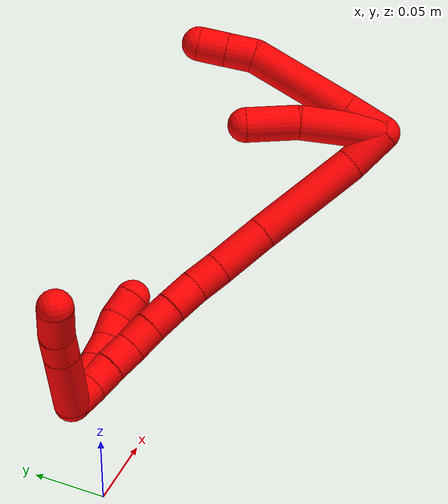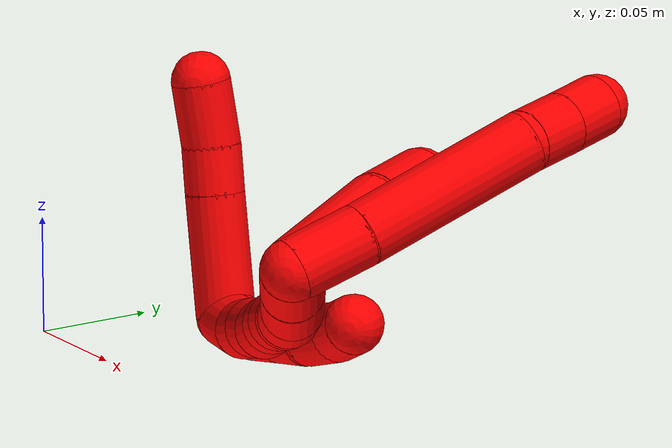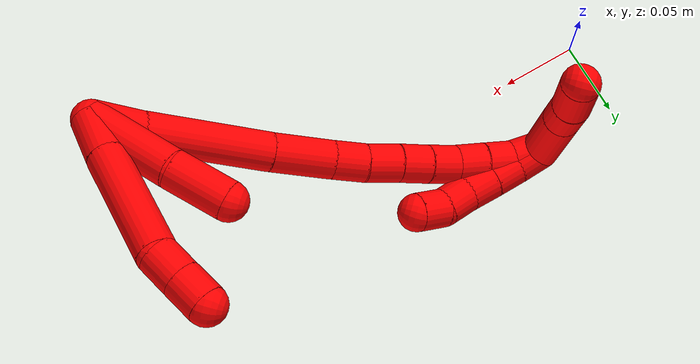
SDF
<sdf version="1.7">
 <world name="default">
  <model name="2">
   <static>0</static>
   <link name="2">
    <collision name="collision-cylinder-e_1_2_8">
     <pose>0.01208 0.001166 -0.009329 -3.0172 0.909456 -2.8882</pose>
     <geometry><cylinder><radius>0.0125</radius><length>0.030615</length></cylinder></geometry>
     <surface>
      <friction><ode><mu>1.16</mu><mu2>1.16</mu2><slip1>0</slip1><slip2>0</slip2></ode></friction>
      <contact><ode><kp>1e+06</kp><kd>1</kd><max_vel>0</max_vel><min_depth>0.001</min_depth></ode></contact>
     </surface>
    </collision>
    <visual name="visual-cylinder-e_1_2_8">
     <pose>0.01208 0.001166 -0.009329 -3.0172 0.909456 -2.8882</pose>
     <geometry><cylinder><radius>0.0125</radius><length>0.030615</length></cylinder></geometry>
     <material><ambient>1 0 0 1</ambient></material>
    </visual>
    <collision name="collision-cylinder-e_2_8_9">
     <pose>0.053519 0.006621 -0.043792 -2.97259 0.855669 -2.77428</pose>
     <geometry><cylinder><radius>0.0125</radius><length>0.07777</length></cylinder></geometry>
     <surface>
      <friction><ode><mu>1.16</mu><mu2>1.16</mu2><slip1>0</slip1><slip2>0</slip2></ode></friction>
      <contact><ode><kp>1e+06</kp><kd>1</kd><max_vel>0</max_vel><min_depth>0.001</min_depth></ode></contact>
     </surface>
    </collision>
    <visual name="visual-cylinder-e_2_8_9">
     <pose>0.053519 0.006621 -0.043792 -2.97259 0.855669 -2.77428</pose>
     <geometry><cylinder><radius>0.0125</radius><length>0.07777</length></cylinder></geometry>
     <material><ambient>1 0 0 1</ambient></material>
    </visual>
    <collision name="collision-cylinder-e_3_9_10">
     <pose>0.088346 0.010868 -0.077873 3.13685 0.548646 3.12476</pose>
     <geometry><cylinder><radius>0.0125</radius><length>0.020971</length></cylinder></geometry>
     <surface>
      <friction><ode><mu>1.16</mu><mu2>1.16</mu2><slip1>0</slip1><slip2>0</slip2></ode></friction>
      <contact><ode><kp>1e+06</kp><kd>1</kd><max_vel>0</max_vel><min_depth>0.001</min_depth></ode></contact>
     </surface>
    </collision>
    <visual name="visual-cylinder-e_3_9_10">
     <pose>0.088346 0.010868 -0.077873 3.13685 0.548646 3.12476</pose>
     <geometry><cylinder><radius>0.0125</radius><length>0.020971</length></cylinder></geometry>
     <material><ambient>1 0 0 1</ambient></material>
    </visual>
    <collision name="collision-cylinder-e_4_10_6">
     <pose>0.099165 0.010939 -0.095645 -3.12873 0.544944 -3.09557</pose>
     <geometry><cylinder><radius>0.0125</radius><length>0.020644</length></cylinder></geometry>
     <surface>
      <friction><ode><mu>1.16</mu><mu2>1.16</mu2><slip1>0</slip1><slip2>0</slip2></ode></friction>
      <contact><ode><kp>1e+06</kp><kd>1</kd><max_vel>0</max_vel><min_depth>0.001</min_depth></ode></contact>
     </surface>
    </collision>
    <visual name="visual-cylinder-e_4_10_6">
     <pose>0.099165 0.010939 -0.095645 -3.12873 0.544944 -3.09557</pose>
     <geometry><cylinder><radius>0.0125</radius><length>0.020644</length></cylinder></geometry>
     <material><ambient>1 0 0 1</ambient></material>
    </visual>
    <collision name="collision-cylinder-e_1_2_11">
     <pose>0.010942 0.003315 -0.028623 -3.02628 0.362908 -2.532</pose>
     <geometry><cylinder><radius>0.0125</radius><length>0.061644</length></cylinder></geometry>
     <surface>
      <friction><ode><mu>1.16</mu><mu2>1.16</mu2><slip1>0</slip1><slip2>0</slip2></ode></friction>
      <contact><ode><kp>1e+06</kp><kd>1</kd><max_vel>0</max_vel><min_depth>0.001</min_depth></ode></contact>
     </surface>
    </collision>
    <visual name="visual-cylinder-e_1_2_11">
     <pose>0.010942 0.003315 -0.028623 -3.02628 0.362908 -2.532</pose>
     <geometry><cylinder><radius>0.0125</radius><length>0.061644</length></cylinder></geometry>
     <material><ambient>1 0 0 1</ambient></material>
    </visual>
    <collision name="collision-cylinder-e_2_11_5">
     <pose>0.026552 0.006112 -0.07584 3.11371 0.245896 2.91689</pose>
     <geometry><cylinder><radius>0.0125</radius><length>0.038356</length></cylinder></geometry>
     <surface>
      <friction><ode><mu>1.16</mu><mu2>1.16</mu2><slip1>0</slip1><slip2>0</slip2></ode></friction>
      <contact><ode><kp>1e+06</kp><kd>1</kd><max_vel>0</max_vel><min_depth>0.001</min_depth></ode></contact>
     </surface>
    </collision>
    <visual name="visual-cylinder-e_2_11_5">
     <pose>0.026552 0.006112 -0.07584 3.11371 0.245896 2.91689</pose>
     <geometry><cylinder><radius>0.0125</radius><length>0.038356</length></cylinder></geometry>
     <material><ambient>1 0 0 1</ambient></material>
    </visual>
    <collision name="collision-cylinder-e_1_2_12">
     <pose>-0.005672 -0.005806 -0.013886 2.74559 -0.360372 -1.47438</pose>
     <geometry><cylinder><radius>0.0125</radius><length>0.032168</length></cylinder></geometry>
     <surface>
      <friction><ode><mu>1.16</mu><mu2>1.16</mu2><slip1>0</slip1><slip2>0</slip2></ode></friction>
      <contact><ode><kp>1e+06</kp><kd>1</kd><max_vel>0</max_vel><min_depth>0.001</min_depth></ode></contact>
     </surface>
    </collision>
    <visual name="visual-cylinder-e_1_2_12">
     <pose>-0.005672 -0.005806 -0.013886 2.74559 -0.360372 -1.47438</pose>
     <geometry><cylinder><radius>0.0125</radius><length>0.032168</length></cylinder></geometry>
     <material><ambient>1 0 0 1</ambient></material>
    </visual>
    <collision name="collision-cylinder-e_2_12_13">
     <pose>-0.024459 -0.020697 -0.065415 2.90474 -0.326577 -1.89069</pose>
     <geometry><cylinder><radius>0.0125</radius><length>0.081768</length></cylinder></geometry>
     <surface>
      <friction><ode><mu>1.16</mu><mu2>1.16</mu2><slip1>0</slip1><slip2>0</slip2></ode></friction>
      <contact><ode><kp>1e+06</kp><kd>1</kd><max_vel>0</max_vel><min_depth>0.001</min_depth></ode></contact>
     </surface>
    </collision>
    <visual name="visual-cylinder-e_2_12_13">
     <pose>-0.024459 -0.020697 -0.065415 2.90474 -0.326577 -1.89069</pose>
     <geometry><cylinder><radius>0.0125</radius><length>0.081768</length></cylinder></geometry>
     <material><ambient>1 0 0 1</ambient></material>
    </visual>
    <collision name="collision-cylinder-e_3_13_14">
     <pose>-0.0447 -0.033905 -0.121564 2.92249 -0.359462 -2.05285</pose>
     <geometry><cylinder><radius>0.0125</radius><length>0.04051</length></cylinder></geometry>
     <surface>
      <friction><ode><mu>1.16</mu><mu2>1.16</mu2><slip1>0</slip1><slip2>0</slip2></ode></friction>
      <contact><ode><kp>1e+06</kp><kd>1</kd><max_vel>0</max_vel><min_depth>0.001</min_depth></ode></contact>
     </surface>
    </collision>
    <visual name="visual-cylinder-e_3_13_14">
     <pose>-0.0447 -0.033905 -0.121564 2.92249 -0.359462 -2.05285</pose>
     <geometry><cylinder><radius>0.0125</radius><length>0.04051</length></cylinder></geometry>
     <material><ambient>1 0 0 1</ambient></material>
    </visual>
    <collision name="collision-cylinder-e_4_14_15">
     <pose>-0.055635 -0.039723 -0.150333 2.97767 -0.351144 -2.27427</pose>
     <geometry><cylinder><radius>0.0125</radius><length>0.022156</length></cylinder></geometry>
     <surface>
      <friction><ode><mu>1.16</mu><mu2>1.16</mu2><slip1>0</slip1><slip2>0</slip2></ode></friction>
      <contact><ode><kp>1e+06</kp><kd>1</kd><max_vel>0</max_vel><min_depth>0.001</min_depth></ode></contact>
     </surface>
    </collision>
    <visual name="visual-cylinder-e_4_14_15">
     <pose>-0.055635 -0.039723 -0.150333 2.97767 -0.351144 -2.27427</pose>
     <geometry><cylinder><radius>0.0125</radius><length>0.022156</length></cylinder></geometry>
     <material><ambient>1 0 0 1</ambient></material>
    </visual>
    <collision name="collision-cylinder-e_5_15_16">
     <pose>-0.064298 -0.042737 -0.170741 3.01258 -0.442915 -2.58281</pose>
     <geometry><cylinder><radius>0.0125</radius><length>0.022645</length></cylinder></geometry>
     <surface>
      <friction><ode><mu>1.16</mu><mu2>1.16</mu2><slip1>0</slip1><slip2>0</slip2></ode></friction>
      <contact><ode><kp>1e+06</kp><kd>1</kd><max_vel>0</max_vel><min_depth>0.001</min_depth></ode></contact>
     </surface>
    </collision>
    <visual name="visual-cylinder-e_5_15_16">
     <pose>-0.064298 -0.042737 -0.170741 3.01258 -0.442915 -2.58281</pose>
     <geometry><cylinder><radius>0.0125</radius><length>0.022645</length></cylinder></geometry>
     <material><ambient>1 0 0 1</ambient></material>
    </visual>
    <collision name="collision-cylinder-e_6_16_17">
     <pose>-0.073435 -0.045744 -0.189865 2.95541 -0.438416 -2.34795</pose>
     <geometry><cylinder><radius>0.0125</radius><length>0.020184</length></cylinder></geometry>
     <surface>
      <friction><ode><mu>1.16</mu><mu2>1.16</mu2><slip1>0</slip1><slip2>0</slip2></ode></friction>
      <contact><ode><kp>1e+06</kp><kd>1</kd><max_vel>0</max_vel><min_depth>0.001</min_depth></ode></contact>
     </surface>
    </collision>
    <visual name="visual-cylinder-e_6_16_17">
     <pose>-0.073435 -0.045744 -0.189865 2.95541 -0.438416 -2.34795</pose>
     <geometry><cylinder><radius>0.0125</radius><length>0.020184</length></cylinder></geometry>
     <material><ambient>1 0 0 1</ambient></material>
    </visual>
    <collision name="collision-cylinder-e_7_17_18">
     <pose>-0.082426 -0.049317 -0.207507 2.92777 -0.488081 -2.32771</pose>
     <geometry><cylinder><radius>0.0125</radius><length>0.020073</length></cylinder></geometry>
     <surface>
      <friction><ode><mu>1.16</mu><mu2>1.16</mu2><slip1>0</slip1><slip2>0</slip2></ode></friction>
      <contact><ode><kp>1e+06</kp><kd>1</kd><max_vel>0</max_vel><min_depth>0.001</min_depth></ode></contact>
     </surface>
    </collision>
    <visual name="visual-cylinder-e_7_17_18">
     <pose>-0.082426 -0.049317 -0.207507 2.92777 -0.488081 -2.32771</pose>
     <geometry><cylinder><radius>0.0125</radius><length>0.020073</length></cylinder></geometry>
     <material><ambient>1 0 0 1</ambient></material>
    </visual>
    <collision name="collision-cylinder-e_8_18_19">
     <pose>-0.09198 -0.051701 -0.225067 3.08506 -0.498222 -2.92023</pose>
     <geometry><cylinder><radius>0.0125</radius><length>0.020288</length></cylinder></geometry>
     <surface>
      <friction><ode><mu>1.16</mu><mu2>1.16</mu2><slip1>0</slip1><slip2>0</slip2></ode></friction>
      <contact><ode><kp>1e+06</kp><kd>1</kd><max_vel>0</max_vel><min_depth>0.001</min_depth></ode></contact>
     </surface>
    </collision>
    <visual name="visual-cylinder-e_8_18_19">
     <pose>-0.09198 -0.051701 -0.225067 3.08506 -0.498222 -2.92023</pose>
     <geometry><cylinder><radius>0.0125</radius><length>0.020288</length></cylinder></geometry>
     <material><ambient>1 0 0 1</ambient></material>
    </visual>
    <collision name="collision-cylinder-e_9_19_20">
     <pose>-0.101848 -0.053175 -0.242586 3.02958 -0.524624 -2.72989</pose>
     <geometry><cylinder><radius>0.0125</radius><length>0.02005</length></cylinder></geometry>
     <surface>
      <friction><ode><mu>1.16</mu><mu2>1.16</mu2><slip1>0</slip1><slip2>0</slip2></ode></friction>
      <contact><ode><kp>1e+06</kp><kd>1</kd><max_vel>0</max_vel><min_depth>0.001</min_depth></ode></contact>
     </surface>
    </collision>
    <visual name="visual-cylinder-e_9_19_20">
     <pose>-0.101848 -0.053175 -0.242586 3.02958 -0.524624 -2.72989</pose>
     <geometry><cylinder><radius>0.0125</radius><length>0.02005</length></cylinder></geometry>
     <material><ambient>1 0 0 1</ambient></material>
    </visual>
    <collision name="collision-cylinder-e_10_20_1">
     <pose>-0.112334 -0.051815 -0.259351 -2.8629 -0.572965 2.25289</pose>
     <geometry><cylinder><radius>0.0125</radius><length>0.020158</length></cylinder></geometry>
     <surface>
      <friction><ode><mu>1.16</mu><mu2>1.16</mu2><slip1>0</slip1><slip2>0</slip2></ode></friction>
      <contact><ode><kp>1e+06</kp><kd>1</kd><max_vel>0</max_vel><min_depth>0.001</min_depth></ode></contact>
     </surface>
    </collision>
    <visual name="visual-cylinder-e_10_20_1">
     <pose>-0.112334 -0.051815 -0.259351 -2.8629 -0.572965 2.25289</pose>
     <geometry><cylinder><radius>0.0125</radius><length>0.020158</length></cylinder></geometry>
     <material><ambient>1 0 0 1</ambient></material>
    </visual>
    <collision name="collision-cylinder-e_1_1_21">
     <pose>-0.111571 -0.024079 -0.269473 -1.64855 0.23967 -0.258861</pose>
     <geometry><cylinder><radius>0.0125</radius><length>0.052465</length></cylinder></geometry>
     <surface>
      <friction><ode><mu>1.16</mu><mu2>1.16</mu2><slip1>0</slip1><slip2>0</slip2></ode></friction>
      <contact><ode><kp>1e+06</kp><kd>1</kd><max_vel>0</max_vel><min_depth>0.001</min_depth></ode></contact>
     </surface>
    </collision>
    <visual name="visual-cylinder-e_1_1_21">
     <pose>-0.111571 -0.024079 -0.269473 -1.64855 0.23967 -0.258861</pose>
     <geometry><cylinder><radius>0.0125</radius><length>0.052465</length></cylinder></geometry>
     <material><ambient>1 0 0 1</ambient></material>
    </visual>
    <collision name="collision-cylinder-e_2_21_22">
     <pose>-0.102844 0.011075 -0.272299 -1.65741 0.250106 -0.272495</pose>
     <geometry><cylinder><radius>0.0125</radius><length>0.020199</length></cylinder></geometry>
     <surface>
      <friction><ode><mu>1.16</mu><mu2>1.16</mu2><slip1>0</slip1><slip2>0</slip2></ode></friction>
      <contact><ode><kp>1e+06</kp><kd>1</kd><max_vel>0</max_vel><min_depth>0.001</min_depth></ode></contact>
     </surface>
    </collision>
    <visual name="visual-cylinder-e_2_21_22">
     <pose>-0.102844 0.011075 -0.272299 -1.65741 0.250106 -0.272495</pose>
     <geometry><cylinder><radius>0.0125</radius><length>0.020199</length></cylinder></geometry>
     <material><ambient>1 0 0 1</ambient></material>
    </visual>
    <collision name="collision-cylinder-e_3_22_4">
     <pose>-0.097722 0.034234 -0.272823 -1.5468 0.193044 -0.188493</pose>
     <geometry><cylinder><radius>0.0125</radius><length>0.027336</length></cylinder></geometry>
     <surface>
      <friction><ode><mu>1.16</mu><mu2>1.16</mu2><slip1>0</slip1><slip2>0</slip2></ode></friction>
      <contact><ode><kp>1e+06</kp><kd>1</kd><max_vel>0</max_vel><min_depth>0.001</min_depth></ode></contact>
     </surface>
    </collision>
    <visual name="visual-cylinder-e_3_22_4">
     <pose>-0.097722 0.034234 -0.272823 -1.5468 0.193044 -0.188493</pose>
     <geometry><cylinder><radius>0.0125</radius><length>0.027336</length></cylinder></geometry>
     <material><ambient>1 0 0 1</ambient></material>
    </visual>
    <collision name="collision-cylinder-e_1_1_23">
     <pose>-0.111048 -0.052861 -0.260933 0.475256 0.740924 0.18759</pose>
     <geometry><cylinder><radius>0.0125</radius><length>0.02</length></cylinder></geometry>
     <surface>
      <friction><ode><mu>1.16</mu><mu2>1.16</mu2><slip1>0</slip1><slip2>0</slip2></ode></friction>
      <contact><ode><kp>1e+06</kp><kd>1</kd><max_vel>0</max_vel><min_depth>0.001</min_depth></ode></contact>
     </surface>
    </collision>
    <visual name="visual-cylinder-e_1_1_23">
     <pose>-0.111048 -0.052861 -0.260933 0.475256 0.740924 0.18759</pose>
     <geometry><cylinder><radius>0.0125</radius><length>0.02</length></cylinder></geometry>
     <material><ambient>1 0 0 1</ambient></material>
    </visual>
    <collision name="collision-cylinder-e_2_23_24">
     <pose>-0.096775 -0.057481 -0.247903 0.190013 0.851639 0.086391</pose>
     <geometry><cylinder><radius>0.0125</radius><length>0.02</length></cylinder></geometry>
     <surface>
      <friction><ode><mu>1.16</mu><mu2>1.16</mu2><slip1>0</slip1><slip2>0</slip2></ode></friction>
      <contact><ode><kp>1e+06</kp><kd>1</kd><max_vel>0</max_vel><min_depth>0.001</min_depth></ode></contact>
     </surface>
    </collision>
    <visual name="visual-cylinder-e_2_23_24">
     <pose>-0.096775 -0.057481 -0.247903 0.190013 0.851639 0.086391</pose>
     <geometry><cylinder><radius>0.0125</radius><length>0.02</length></cylinder></geometry>
     <material><ambient>1 0 0 1</ambient></material>
    </visual>
    <collision name="collision-cylinder-e_3_24_25">
     <pose>-0.081863 -0.059962 -0.234809 0.184529 0.831288 0.08163</pose>
     <geometry><cylinder><radius>0.0125</radius><length>0.02</length></cylinder></geometry>
     <surface>
      <friction><ode><mu>1.16</mu><mu2>1.16</mu2><slip1>0</slip1><slip2>0</slip2></ode></friction>
      <contact><ode><kp>1e+06</kp><kd>1</kd><max_vel>0</max_vel><min_depth>0.001</min_depth></ode></contact>
     </surface>
    </collision>
    <visual name="visual-cylinder-e_3_24_25">
     <pose>-0.081863 -0.059962 -0.234809 0.184529 0.831288 0.08163</pose>
     <geometry><cylinder><radius>0.0125</radius><length>0.02</length></cylinder></geometry>
     <material><ambient>1 0 0 1</ambient></material>
    </visual>
    <collision name="collision-cylinder-e_4_25_26">
     <pose>-0.066308 -0.061281 -0.222414 0.014305 0.955669 0.007408</pose>
     <geometry><cylinder><radius>0.0125</radius><length>0.02</length></cylinder></geometry>
     <surface>
      <friction><ode><mu>1.16</mu><mu2>1.16</mu2><slip1>0</slip1><slip2>0</slip2></ode></friction>
      <contact><ode><kp>1e+06</kp><kd>1</kd><max_vel>0</max_vel><min_depth>0.001</min_depth></ode></contact>
     </surface>
    </collision>
    <visual name="visual-cylinder-e_4_25_26">
     <pose>-0.066308 -0.061281 -0.222414 0.014305 0.955669 0.007408</pose>
     <geometry><cylinder><radius>0.0125</radius><length>0.02</length></cylinder></geometry>
     <material><ambient>1 0 0 1</ambient></material>
    </visual>
    <collision name="collision-cylinder-e_5_26_3">
     <pose>-0.052049 -0.059616 -0.208909 -0.2222 0.655082 -0.075775</pose>
     <geometry><cylinder><radius>0.0125</radius><length>0.02</length></cylinder></geometry>
     <surface>
      <friction><ode><mu>1.16</mu><mu2>1.16</mu2><slip1>0</slip1><slip2>0</slip2></ode></friction>
      <contact><ode><kp>1e+06</kp><kd>1</kd><max_vel>0</max_vel><min_depth>0.001</min_depth></ode></contact>
     </surface>
    </collision>
    <visual name="visual-cylinder-e_5_26_3">
     <pose>-0.052049 -0.059616 -0.208909 -0.2222 0.655082 -0.075775</pose>
     <geometry><cylinder><radius>0.0125</radius><length>0.02</length></cylinder></geometry>
     <material><ambient>1 0 0 1</ambient></material>
    </visual>
    <collision name="collision-sphere-3">
     <pose>-0.045957 -0.057868 -0.201174 0 -0 0</pose>
     <geometry><sphere><radius>0.0125</radius></sphere></geometry>
     <surface>
      <friction><ode><mu>1.16</mu><mu2>1.16</mu2><slip1>0</slip1><slip2>0</slip2></ode></friction>
      <contact><ode><kp>1e+06</kp><kd>1</kd><max_vel>0</max_vel><min_depth>0.001</min_depth></ode></contact>
     </surface>
    </collision>
    <visual name="visual-sphere-3">
     <pose>-0.045957 -0.057868 -0.201174 0 -0 0</pose>
     <geometry><sphere><radius>0.0125</radius></sphere></geometry>
     <material><ambient>1 0 0 1</ambient></material>
    </visual>
    <collision name="collision-sphere-26">
     <pose>-0.058141 -0.061364 -0.216644 0 -0 0</pose>
     <geometry><sphere><radius>0.0125</radius></sphere></geometry>
     <surface>
      <friction><ode><mu>1.16</mu><mu2>1.16</mu2><slip1>0</slip1><slip2>0</slip2></ode></friction>
      <contact><ode><kp>1e+06</kp><kd>1</kd><max_vel>0</max_vel><min_depth>0.001</min_depth></ode></contact>
     </surface>
    </collision>
    <visual name="visual-sphere-26">
     <pose>-0.058141 -0.061364 -0.216644 0 -0 0</pose>
     <geometry><sphere><radius>0.0125</radius></sphere></geometry>
     <material><ambient>1 0 0 1</ambient></material>
    </visual>
    <collision name="collision-sphere-25">
     <pose>-0.074475 -0.061198 -0.228184 0 -0 0</pose>
     <geometry><sphere><radius>0.0125</radius></sphere></geometry>
     <surface>
      <friction><ode><mu>1.16</mu><mu2>1.16</mu2><slip1>0</slip1><slip2>0</slip2></ode></friction>
      <contact><ode><kp>1e+06</kp><kd>1</kd><max_vel>0</max_vel><min_depth>0.001</min_depth></ode></contact>
     </surface>
    </collision>
    <visual name="visual-sphere-25">
     <pose>-0.074475 -0.061198 -0.228184 0 -0 0</pose>
     <geometry><sphere><radius>0.0125</radius></sphere></geometry>
     <material><ambient>1 0 0 1</ambient></material>
    </visual>
    <collision name="collision-sphere-24">
     <pose>-0.089251 -0.058725 -0.241434 0 -0 0</pose>
     <geometry><sphere><radius>0.0125</radius></sphere></geometry>
     <surface>
      <friction><ode><mu>1.16</mu><mu2>1.16</mu2><slip1>0</slip1><slip2>0</slip2></ode></friction>
      <contact><ode><kp>1e+06</kp><kd>1</kd><max_vel>0</max_vel><min_depth>0.001</min_depth></ode></contact>
     </surface>
    </collision>
    <visual name="visual-sphere-24">
     <pose>-0.089251 -0.058725 -0.241434 0 -0 0</pose>
     <geometry><sphere><radius>0.0125</radius></sphere></geometry>
     <material><ambient>1 0 0 1</ambient></material>
    </visual>
    <collision name="collision-sphere-23">
     <pose>-0.104298 -0.056237 -0.254372 0 -0 0</pose>
     <geometry><sphere><radius>0.0125</radius></sphere></geometry>
     <surface>
      <friction><ode><mu>1.16</mu><mu2>1.16</mu2><slip1>0</slip1><slip2>0</slip2></ode></friction>
      <contact><ode><kp>1e+06</kp><kd>1</kd><max_vel>0</max_vel><min_depth>0.001</min_depth></ode></contact>
     </surface>
    </collision>
    <visual name="visual-sphere-23">
     <pose>-0.104298 -0.056237 -0.254372 0 -0 0</pose>
     <geometry><sphere><radius>0.0125</radius></sphere></geometry>
     <material><ambient>1 0 0 1</ambient></material>
    </visual>
    <collision name="collision-sphere-4">
     <pose>-0.0951 0.047644 -0.272501 0 -0 0</pose>
     <geometry><sphere><radius>0.0125</radius></sphere></geometry>
     <surface>
      <friction><ode><mu>1.16</mu><mu2>1.16</mu2><slip1>0</slip1><slip2>0</slip2></ode></friction>
      <contact><ode><kp>1e+06</kp><kd>1</kd><max_vel>0</max_vel><min_depth>0.001</min_depth></ode></contact>
     </surface>
    </collision>
    <visual name="visual-sphere-4">
     <pose>-0.0951 0.047644 -0.272501 0 -0 0</pose>
     <geometry><sphere><radius>0.0125</radius></sphere></geometry>
     <material><ambient>1 0 0 1</ambient></material>
    </visual>
    <collision name="collision-sphere-22">
     <pose>-0.100344 0.020824 -0.273145 0 -0 0</pose>
     <geometry><sphere><radius>0.0125</radius></sphere></geometry>
     <surface>
      <friction><ode><mu>1.16</mu><mu2>1.16</mu2><slip1>0</slip1><slip2>0</slip2></ode></friction>
      <contact><ode><kp>1e+06</kp><kd>1</kd><max_vel>0</max_vel><min_depth>0.001</min_depth></ode></contact>
     </surface>
    </collision>
    <visual name="visual-sphere-22">
     <pose>-0.100344 0.020824 -0.273145 0 -0 0</pose>
     <geometry><sphere><radius>0.0125</radius></sphere></geometry>
     <material><ambient>1 0 0 1</ambient></material>
    </visual>
    <collision name="collision-sphere-21">
     <pose>-0.105344 0.001327 -0.271452 0 -0 0</pose>
     <geometry><sphere><radius>0.0125</radius></sphere></geometry>
     <surface>
      <friction><ode><mu>1.16</mu><mu2>1.16</mu2><slip1>0</slip1><slip2>0</slip2></ode></friction>
      <contact><ode><kp>1e+06</kp><kd>1</kd><max_vel>0</max_vel><min_depth>0.001</min_depth></ode></contact>
     </surface>
    </collision>
    <visual name="visual-sphere-21">
     <pose>-0.105344 0.001327 -0.271452 0 -0 0</pose>
     <geometry><sphere><radius>0.0125</radius></sphere></geometry>
     <material><ambient>1 0 0 1</ambient></material>
    </visual>
    <collision name="collision-sphere-1">
     <pose>-0.117798 -0.049485 -0.267493 0 -0 0</pose>
     <geometry><sphere><radius>0.0125</radius></sphere></geometry>
     <surface>
      <friction><ode><mu>1.16</mu><mu2>1.16</mu2><slip1>0</slip1><slip2>0</slip2></ode></friction>
      <contact><ode><kp>1e+06</kp><kd>1</kd><max_vel>0</max_vel><min_depth>0.001</min_depth></ode></contact>
     </surface>
    </collision>
    <visual name="visual-sphere-1">
     <pose>-0.117798 -0.049485 -0.267493 0 -0 0</pose>
     <geometry><sphere><radius>0.0125</radius></sphere></geometry>
     <material><ambient>1 0 0 1</ambient></material>
    </visual>
    <collision name="collision-sphere-11">
     <pose>0.021883 0.006631 -0.057246 0 -0 0</pose>
     <geometry><sphere><radius>0.0125</radius></sphere></geometry>
     <surface>
      <friction><ode><mu>1.16</mu><mu2>1.16</mu2><slip1>0</slip1><slip2>0</slip2></ode></friction>
      <contact><ode><kp>1e+06</kp><kd>1</kd><max_vel>0</max_vel><min_depth>0.001</min_depth></ode></contact>
     </surface>
    </collision>
    <visual name="visual-sphere-11">
     <pose>0.021883 0.006631 -0.057246 0 -0 0</pose>
     <geometry><sphere><radius>0.0125</radius></sphere></geometry>
     <material><ambient>1 0 0 1</ambient></material>
    </visual>
    <collision name="collision-sphere-6">
     <pose>0.104516 0.011052 -0.104471 0 -0 0</pose>
     <geometry><sphere><radius>0.0125</radius></sphere></geometry>
     <surface>
      <friction><ode><mu>1.16</mu><mu2>1.16</mu2><slip1>0</slip1><slip2>0</slip2></ode></friction>
      <contact><ode><kp>1e+06</kp><kd>1</kd><max_vel>0</max_vel><min_depth>0.001</min_depth></ode></contact>
     </surface>
    </collision>
    <visual name="visual-sphere-6">
     <pose>0.104516 0.011052 -0.104471 0 -0 0</pose>
     <geometry><sphere><radius>0.0125</radius></sphere></geometry>
     <material><ambient>1 0 0 1</ambient></material>
    </visual>
    <collision name="collision-sphere-10">
     <pose>0.093815 0.010825 -0.086819 0 -0 0</pose>
     <geometry><sphere><radius>0.0125</radius></sphere></geometry>
     <surface>
      <friction><ode><mu>1.16</mu><mu2>1.16</mu2><slip1>0</slip1><slip2>0</slip2></ode></friction>
      <contact><ode><kp>1e+06</kp><kd>1</kd><max_vel>0</max_vel><min_depth>0.001</min_depth></ode></contact>
     </surface>
    </collision>
    <visual name="visual-sphere-10">
     <pose>0.093815 0.010825 -0.086819 0 -0 0</pose>
     <geometry><sphere><radius>0.0125</radius></sphere></geometry>
     <material><ambient>1 0 0 1</ambient></material>
    </visual>
    <collision name="collision-sphere-9">
     <pose>0.082877 0.01091 -0.068926 0 -0 0</pose>
     <geometry><sphere><radius>0.0125</radius></sphere></geometry>
     <surface>
      <friction><ode><mu>1.16</mu><mu2>1.16</mu2><slip1>0</slip1><slip2>0</slip2></ode></friction>
      <contact><ode><kp>1e+06</kp><kd>1</kd><max_vel>0</max_vel><min_depth>0.001</min_depth></ode></contact>
     </surface>
    </collision>
    <visual name="visual-sphere-9">
     <pose>0.082877 0.01091 -0.068926 0 -0 0</pose>
     <geometry><sphere><radius>0.0125</radius></sphere></geometry>
     <material><ambient>1 0 0 1</ambient></material>
    </visual>
    <collision name="collision-sphere-2">
     <geometry><sphere><radius>0.0125</radius></sphere></geometry>
     <surface>
      <friction><ode><mu>1.16</mu><mu2>1.16</mu2><slip1>0</slip1><slip2>0</slip2></ode></friction>
      <contact><ode><kp>1e+06</kp><kd>1</kd><max_vel>0</max_vel><min_depth>0.001</min_depth></ode></contact>
     </surface>
    </collision>
    <visual name="visual-sphere-2">
     <geometry><sphere><radius>0.0125</radius></sphere></geometry>
     <material><ambient>1 0 0 1</ambient></material>
    </visual>
    <collision name="collision-sphere-19">
     <pose>-0.096827 -0.052205 -0.233964 0 -0 0</pose>
     <geometry><sphere><radius>0.0125</radius></sphere></geometry>
     <surface>
      <friction><ode><mu>1.16</mu><mu2>1.16</mu2><slip1>0</slip1><slip2>0</slip2></ode></friction>
      <contact><ode><kp>1e+06</kp><kd>1</kd><max_vel>0</max_vel><min_depth>0.001</min_depth></ode></contact>
     </surface>
    </collision>
    <visual name="visual-sphere-19">
     <pose>-0.096827 -0.052205 -0.233964 0 -0 0</pose>
     <geometry><sphere><radius>0.0125</radius></sphere></geometry>
     <material><ambient>1 0 0 1</ambient></material>
    </visual>
    <collision name="collision-sphere-8">
     <pose>0.02416 0.002333 -0.018658 0 -0 0</pose>
     <geometry><sphere><radius>0.0125</radius></sphere></geometry>
     <surface>
      <friction><ode><mu>1.16</mu><mu2>1.16</mu2><slip1>0</slip1><slip2>0</slip2></ode></friction>
      <contact><ode><kp>1e+06</kp><kd>1</kd><max_vel>0</max_vel><min_depth>0.001</min_depth></ode></contact>
     </surface>
    </collision>
    <visual name="visual-sphere-8">
     <pose>0.02416 0.002333 -0.018658 0 -0 0</pose>
     <geometry><sphere><radius>0.0125</radius></sphere></geometry>
     <material><ambient>1 0 0 1</ambient></material>
    </visual>
    <collision name="collision-sphere-5">
     <pose>0.03122 0.005594 -0.094434 0 -0 0</pose>
     <geometry><sphere><radius>0.0125</radius></sphere></geometry>
     <surface>
      <friction><ode><mu>1.16</mu><mu2>1.16</mu2><slip1>0</slip1><slip2>0</slip2></ode></friction>
      <contact><ode><kp>1e+06</kp><kd>1</kd><max_vel>0</max_vel><min_depth>0.001</min_depth></ode></contact>
     </surface>
    </collision>
    <visual name="visual-sphere-5">
     <pose>0.03122 0.005594 -0.094434 0 -0 0</pose>
     <geometry><sphere><radius>0.0125</radius></sphere></geometry>
     <material><ambient>1 0 0 1</ambient></material>
    </visual>
    <collision name="collision-sphere-12">
     <pose>-0.011343 -0.011611 -0.027772 0 -0 0</pose>
     <geometry><sphere><radius>0.0125</radius></sphere></geometry>
     <surface>
      <friction><ode><mu>1.16</mu><mu2>1.16</mu2><slip1>0</slip1><slip2>0</slip2></ode></friction>
      <contact><ode><kp>1e+06</kp><kd>1</kd><max_vel>0</max_vel><min_depth>0.001</min_depth></ode></contact>
     </surface>
    </collision>
    <visual name="visual-sphere-12">
     <pose>-0.011343 -0.011611 -0.027772 0 -0 0</pose>
     <geometry><sphere><radius>0.0125</radius></sphere></geometry>
     <material><ambient>1 0 0 1</ambient></material>
    </visual>
    <collision name="collision-sphere-13">
     <pose>-0.037575 -0.029783 -0.103057 0 -0 0</pose>
     <geometry><sphere><radius>0.0125</radius></sphere></geometry>
     <surface>
      <friction><ode><mu>1.16</mu><mu2>1.16</mu2><slip1>0</slip1><slip2>0</slip2></ode></friction>
      <contact><ode><kp>1e+06</kp><kd>1</kd><max_vel>0</max_vel><min_depth>0.001</min_depth></ode></contact>
     </surface>
    </collision>
    <visual name="visual-sphere-13">
     <pose>-0.037575 -0.029783 -0.103057 0 -0 0</pose>
     <geometry><sphere><radius>0.0125</radius></sphere></geometry>
     <material><ambient>1 0 0 1</ambient></material>
    </visual>
    <collision name="collision-sphere-14">
     <pose>-0.051825 -0.038026 -0.140071 0 -0 0</pose>
     <geometry><sphere><radius>0.0125</radius></sphere></geometry>
     <surface>
      <friction><ode><mu>1.16</mu><mu2>1.16</mu2><slip1>0</slip1><slip2>0</slip2></ode></friction>
      <contact><ode><kp>1e+06</kp><kd>1</kd><max_vel>0</max_vel><min_depth>0.001</min_depth></ode></contact>
     </surface>
    </collision>
    <visual name="visual-sphere-14">
     <pose>-0.051825 -0.038026 -0.140071 0 -0 0</pose>
     <geometry><sphere><radius>0.0125</radius></sphere></geometry>
     <material><ambient>1 0 0 1</ambient></material>
    </visual>
    <collision name="collision-sphere-15">
     <pose>-0.059446 -0.041421 -0.160596 0 -0 0</pose>
     <geometry><sphere><radius>0.0125</radius></sphere></geometry>
     <surface>
      <friction><ode><mu>1.16</mu><mu2>1.16</mu2><slip1>0</slip1><slip2>0</slip2></ode></friction>
      <contact><ode><kp>1e+06</kp><kd>1</kd><max_vel>0</max_vel><min_depth>0.001</min_depth></ode></contact>
     </surface>
    </collision>
    <visual name="visual-sphere-15">
     <pose>-0.059446 -0.041421 -0.160596 0 -0 0</pose>
     <geometry><sphere><radius>0.0125</radius></sphere></geometry>
     <material><ambient>1 0 0 1</ambient></material>
    </visual>
    <collision name="collision-sphere-16">
     <pose>-0.069151 -0.044053 -0.180886 0 -0 0</pose>
     <geometry><sphere><radius>0.0125</radius></sphere></geometry>
     <surface>
      <friction><ode><mu>1.16</mu><mu2>1.16</mu2><slip1>0</slip1><slip2>0</slip2></ode></friction>
      <contact><ode><kp>1e+06</kp><kd>1</kd><max_vel>0</max_vel><min_depth>0.001</min_depth></ode></contact>
     </surface>
    </collision>
    <visual name="visual-sphere-16">
     <pose>-0.069151 -0.044053 -0.180886 0 -0 0</pose>
     <geometry><sphere><radius>0.0125</radius></sphere></geometry>
     <material><ambient>1 0 0 1</ambient></material>
    </visual>
    <collision name="collision-sphere-17">
     <pose>-0.077719 -0.047436 -0.198845 0 -0 0</pose>
     <geometry><sphere><radius>0.0125</radius></sphere></geometry>
     <surface>
      <friction><ode><mu>1.16</mu><mu2>1.16</mu2><slip1>0</slip1><slip2>0</slip2></ode></friction>
      <contact><ode><kp>1e+06</kp><kd>1</kd><max_vel>0</max_vel><min_depth>0.001</min_depth></ode></contact>
     </surface>
    </collision>
    <visual name="visual-sphere-17">
     <pose>-0.077719 -0.047436 -0.198845 0 -0 0</pose>
     <geometry><sphere><radius>0.0125</radius></sphere></geometry>
     <material><ambient>1 0 0 1</ambient></material>
    </visual>
    <collision name="collision-sphere-18">
     <pose>-0.087132 -0.051198 -0.21617 0 -0 0</pose>
     <geometry><sphere><radius>0.0125</radius></sphere></geometry>
     <surface>
      <friction><ode><mu>1.16</mu><mu2>1.16</mu2><slip1>0</slip1><slip2>0</slip2></ode></friction>
      <contact><ode><kp>1e+06</kp><kd>1</kd><max_vel>0</max_vel><min_depth>0.001</min_depth></ode></contact>
     </surface>
    </collision>
    <visual name="visual-sphere-18">
     <pose>-0.087132 -0.051198 -0.21617 0 -0 0</pose>
     <geometry><sphere><radius>0.0125</radius></sphere></geometry>
     <material><ambient>1 0 0 1</ambient></material>
    </visual>
    <collision name="collision-sphere-20">
     <pose>-0.10687 -0.054144 -0.251208 0 -0 0</pose>
     <geometry><sphere><radius>0.0125</radius></sphere></geometry>
     <surface>
      <friction><ode><mu>1.16</mu><mu2>1.16</mu2><slip1>0</slip1><slip2>0</slip2></ode></friction>
      <contact><ode><kp>1e+06</kp><kd>1</kd><max_vel>0</max_vel><min_depth>0.001</min_depth></ode></contact>
     </surface>
    </collision>
    <visual name="visual-sphere-20">
     <pose>-0.10687 -0.054144 -0.251208 0 -0 0</pose>
     <geometry><sphere><radius>0.0125</radius></sphere></geometry>
     <material><ambient>1 0 0 1</ambient></material>
    </visual>
    <inertial>
     <pose>-0.032839 -0.019544 -0.13752 0 -0 0</pose>
     <mass>0.75</mass>
     <inertia>
      <ixx>-0.000129</ixx>
      <ixy>0</ixy>
      <ixz>0</ixz>
      <iyy>3.2e-05</iyy>
      <iyz>0</iyz>
      <izz>-7.2e-05</izz>
     </inertia>
    </inertial>
   </link>
   <pose>0.306382 -0.075139 0.114628 1.51308 -0.359431 0.772288</pose>
  </model>
 </world>
</sdf>
